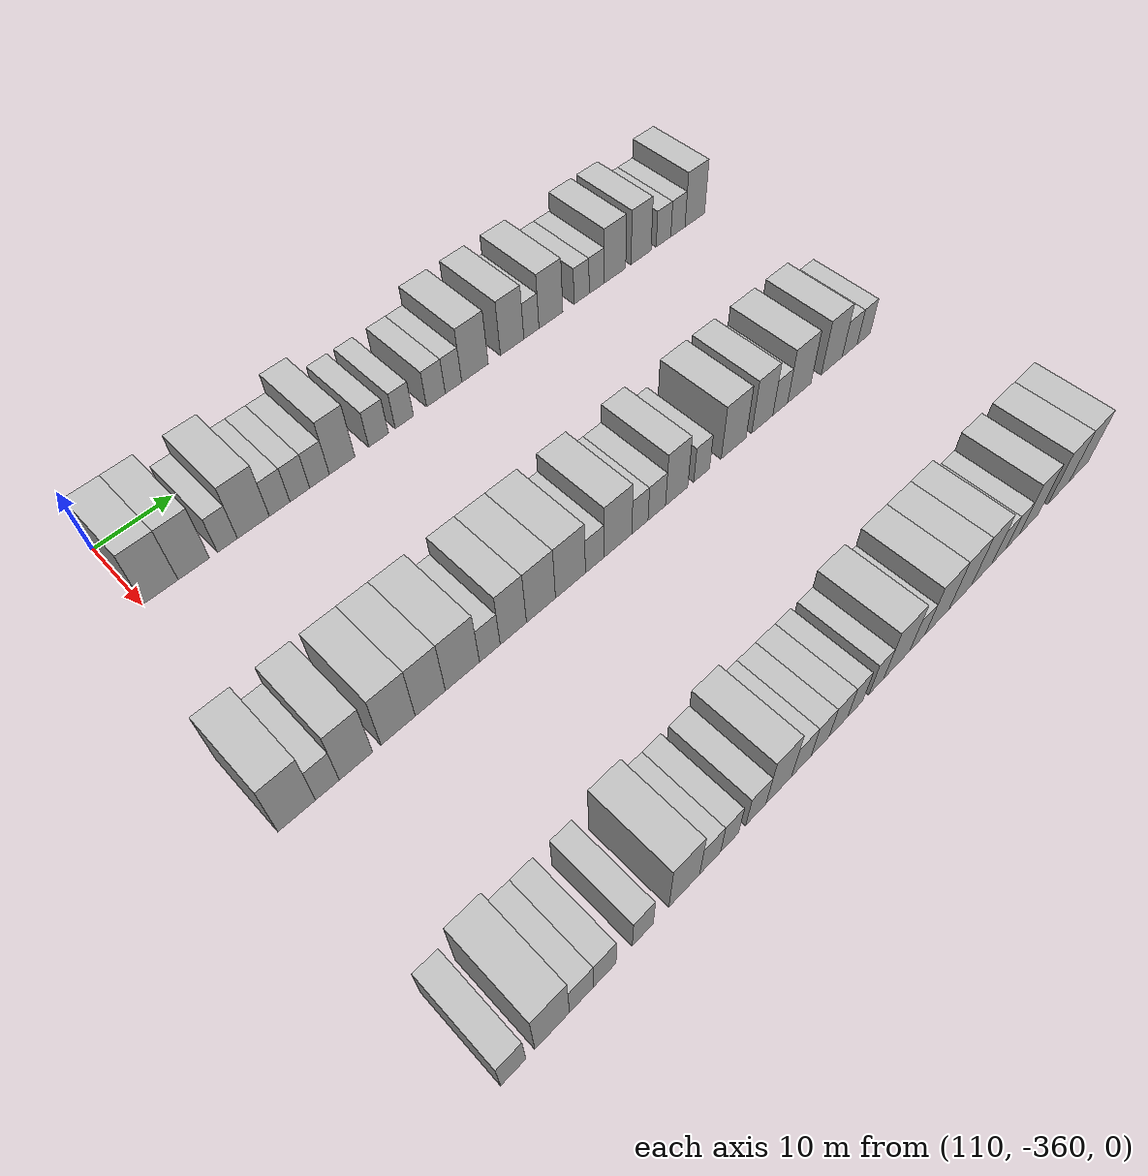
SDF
<sdf version="1.6">
 <world name="default">
  <model name="building_691">
   <static>1</static>
   <pose>115.0000 -357.7864 0 0.000000 0.000000 0.000000</pose>
   <link name="link">
    <pose>0 0 4.50 0 0 0</pose>
    <collision name="collision"><geometry><box><size>10.0000 4.2494 9.0000</size></box></geometry></collision>
    <visual name="visual">
     <cast_shadows>0</cast_shadows>
     <geometry><box><size>10.0000 4.2494 9.0000</size></box></geometry>
     <material>
      <script>
       <uri>model://HANNAS_wall/materials/scripts</uri>
       <uri>model://HANNAS_wall/materials/textures</uri>
       <name>vrc/HANNAS_wall</name>
      </script>
     </material>
    </visual>
   </link>
  </model>
  <model name="building_692">
   <static>1</static>
   <pose>115.0000 -353.7119 0 0.000000 0.000000 0.000000</pose>
   <link name="link">
    <pose>0 0 4.50 0 0 0</pose>
    <collision name="collision"><geometry><box><size>10.0000 3.8997 9.0000</size></box></geometry></collision>
    <visual name="visual">
     <cast_shadows>0</cast_shadows>
     <geometry><box><size>10.0000 3.8997 9.0000</size></box></geometry>
     <material>
      <script>
       <uri>model://HANNAS_wall/materials/scripts</uri>
       <uri>model://HANNAS_wall/materials/textures</uri>
       <name>vrc/HANNAS_wall</name>
      </script>
     </material>
    </visual>
   </link>
  </model>
  <model name="building_693">
   <static>1</static>
   <pose>115.0000 -349.4825 0 0.000000 0.000000 0.000000</pose>
   <link name="link">
    <pose>0 0 3.00 0 0 0</pose>
    <collision name="collision"><geometry><box><size>10.0000 2.5592 6.0000</size></box></geometry></collision>
    <visual name="visual">
     <cast_shadows>0</cast_shadows>
     <geometry><box><size>10.0000 2.5592 6.0000</size></box></geometry>
     <material>
      <script>
       <uri>model://HANNAS_wall/materials/scripts</uri>
       <uri>model://HANNAS_wall/materials/textures</uri>
       <name>vrc/HANNAS_wall</name>
      </script>
     </material>
    </visual>
   </link>
  </model>
  <model name="building_694">
   <static>1</static>
   <pose>115.0000 -346.1117 0 0.000000 0.000000 0.000000</pose>
   <link name="link">
    <pose>0 0 4.50 0 0 0</pose>
    <collision name="collision"><geometry><box><size>10.0000 4.1824 9.0000</size></box></geometry></collision>
    <visual name="visual">
     <cast_shadows>0</cast_shadows>
     <geometry><box><size>10.0000 4.1824 9.0000</size></box></geometry>
     <material>
      <script>
       <uri>model://HANNAS_wall/materials/scripts</uri>
       <uri>model://HANNAS_wall/materials/textures</uri>
       <name>vrc/HANNAS_wall</name>
      </script>
     </material>
    </visual>
   </link>
  </model>
  <model name="building_695">
   <static>1</static>
   <pose>115.0000 -342.6369 0 0.000000 0.000000 0.000000</pose>
   <link name="link">
    <pose>0 0 3.00 0 0 0</pose>
    <collision name="collision"><geometry><box><size>10.0000 2.7671 6.0000</size></box></geometry></collision>
    <visual name="visual">
     <cast_shadows>0</cast_shadows>
     <geometry><box><size>10.0000 2.7671 6.0000</size></box></geometry>
     <material>
      <script>
       <uri>model://HANNAS_wall/materials/scripts</uri>
       <uri>model://HANNAS_wall/materials/textures</uri>
       <name>vrc/HANNAS_wall</name>
      </script>
     </material>
    </visual>
   </link>
  </model>
  <model name="building_696">
   <static>1</static>
   <pose>115.0000 -339.9015 0 0.000000 0.000000 0.000000</pose>
   <link name="link">
    <pose>0 0 3.00 0 0 0</pose>
    <collision name="collision"><geometry><box><size>10.0000 2.7038 6.0000</size></box></geometry></collision>
    <visual name="visual">
     <cast_shadows>0</cast_shadows>
     <geometry><box><size>10.0000 2.7038 6.0000</size></box></geometry>
     <material>
      <script>
       <uri>model://HANNAS_wall/materials/scripts</uri>
       <uri>model://HANNAS_wall/materials/textures</uri>
       <name>vrc/HANNAS_wall</name>
      </script>
     </material>
    </visual>
   </link>
  </model>
  <model name="building_697">
   <static>1</static>
   <pose>115.0000 -337.1848 0 0.000000 0.000000 0.000000</pose>
   <link name="link">
    <pose>0 0 3.00 0 0 0</pose>
    <collision name="collision"><geometry><box><size>10.0000 2.7296 6.0000</size></box></geometry></collision>
    <visual name="visual">
     <cast_shadows>0</cast_shadows>
     <geometry><box><size>10.0000 2.7296 6.0000</size></box></geometry>
     <material>
      <script>
       <uri>model://HANNAS_wall/materials/scripts</uri>
       <uri>model://HANNAS_wall/materials/textures</uri>
       <name>vrc/HANNAS_wall</name>
      </script>
     </material>
    </visual>
   </link>
  </model>
  <model name="building_698">
   <static>1</static>
   <pose>115.0000 -334.0109 0 0.000000 0.000000 0.000000</pose>
   <link name="link">
    <pose>0 0 4.50 0 0 0</pose>
    <collision name="collision"><geometry><box><size>10.0000 3.6183 9.0000</size></box></geometry></collision>
    <visual name="visual">
     <cast_shadows>0</cast_shadows>
     <geometry><box><size>10.0000 3.6183 9.0000</size></box></geometry>
     <material>
      <script>
       <uri>model://HANNAS_wall/materials/scripts</uri>
       <uri>model://HANNAS_wall/materials/textures</uri>
       <name>vrc/HANNAS_wall</name>
      </script>
     </material>
    </visual>
   </link>
  </model>
  <model name="building_699">
   <static>1</static>
   <pose>115.0000 -328.7503 0 0.000000 0.000000 0.000000</pose>
   <link name="link">
    <pose>0 0 3.00 0 0 0</pose>
    <collision name="collision"><geometry><box><size>10.0000 2.9029 6.0000</size></box></geometry></collision>
    <visual name="visual">
     <cast_shadows>0</cast_shadows>
     <geometry><box><size>10.0000 2.9029 6.0000</size></box></geometry>
     <material>
      <script>
       <uri>model://HANNAS_wall/materials/scripts</uri>
       <uri>model://HANNAS_wall/materials/textures</uri>
       <name>vrc/HANNAS_wall</name>
      </script>
     </material>
    </visual>
   </link>
  </model>
  <model name="building_700">
   <static>1</static>
   <pose>115.0000 -324.9254 0 0.000000 0.000000 0.000000</pose>
   <link name="link">
    <pose>0 0 3.00 0 0 0</pose>
    <collision name="collision"><geometry><box><size>10.0000 2.7469 6.0000</size></box></geometry></collision>
    <visual name="visual">
     <cast_shadows>0</cast_shadows>
     <geometry><box><size>10.0000 2.7469 6.0000</size></box></geometry>
     <material>
      <script>
       <uri>model://HANNAS_wall/materials/scripts</uri>
       <uri>model://HANNAS_wall/materials/textures</uri>
       <name>vrc/HANNAS_wall</name>
      </script>
     </material>
    </visual>
   </link>
  </model>
  <model name="building_701">
   <static>1</static>
   <pose>115.0000 -320.0923 0 0.000000 0.000000 0.000000</pose>
   <link name="link">
    <pose>0 0 3.00 0 0 0</pose>
    <collision name="collision"><geometry><box><size>10.0000 2.9194 6.0000</size></box></geometry></collision>
    <visual name="visual">
     <cast_shadows>0</cast_shadows>
     <geometry><box><size>10.0000 2.9194 6.0000</size></box></geometry>
     <material>
      <script>
       <uri>model://HANNAS_wall/materials/scripts</uri>
       <uri>model://HANNAS_wall/materials/textures</uri>
       <name>vrc/HANNAS_wall</name>
      </script>
     </material>
    </visual>
   </link>
  </model>
  <model name="building_702">
   <static>1</static>
   <pose>115.0000 -317.3382 0 0.000000 0.000000 0.000000</pose>
   <link name="link">
    <pose>0 0 3.00 0 0 0</pose>
    <collision name="collision"><geometry><box><size>10.0000 2.5888 6.0000</size></box></geometry></collision>
    <visual name="visual">
     <cast_shadows>0</cast_shadows>
     <geometry><box><size>10.0000 2.5888 6.0000</size></box></geometry>
     <material>
      <script>
       <uri>model://HANNAS_wall/materials/scripts</uri>
       <uri>model://HANNAS_wall/materials/textures</uri>
       <name>vrc/HANNAS_wall</name>
      </script>
     </material>
    </visual>
   </link>
  </model>
  <model name="building_703">
   <static>1</static>
   <pose>115.0000 -313.9097 0 0.000000 0.000000 0.000000</pose>
   <link name="link">
    <pose>0 0 4.50 0 0 0</pose>
    <collision name="collision"><geometry><box><size>10.0000 4.2681 9.0000</size></box></geometry></collision>
    <visual name="visual">
     <cast_shadows>0</cast_shadows>
     <geometry><box><size>10.0000 4.2681 9.0000</size></box></geometry>
     <material>
      <script>
       <uri>model://HANNAS_wall/materials/scripts</uri>
       <uri>model://HANNAS_wall/materials/textures</uri>
       <name>vrc/HANNAS_wall</name>
      </script>
     </material>
    </visual>
   </link>
  </model>
  <model name="building_704">
   <static>1</static>
   <pose>115.0000 -307.8101 0 0.000000 0.000000 0.000000</pose>
   <link name="link">
    <pose>0 0 4.50 0 0 0</pose>
    <collision name="collision"><geometry><box><size>10.0000 3.9313 9.0000</size></box></geometry></collision>
    <visual name="visual">
     <cast_shadows>0</cast_shadows>
     <geometry><box><size>10.0000 3.9313 9.0000</size></box></geometry>
     <material>
      <script>
       <uri>model://HANNAS_wall/materials/scripts</uri>
       <uri>model://HANNAS_wall/materials/textures</uri>
       <name>vrc/HANNAS_wall</name>
      </script>
     </material>
    </visual>
   </link>
  </model>
  <model name="building_705">
   <static>1</static>
   <pose>115.0000 -304.5582 0 0.000000 0.000000 0.000000</pose>
   <link name="link">
    <pose>0 0 3.00 0 0 0</pose>
    <collision name="collision"><geometry><box><size>10.0000 2.5724 6.0000</size></box></geometry></collision>
    <visual name="visual">
     <cast_shadows>0</cast_shadows>
     <geometry><box><size>10.0000 2.5724 6.0000</size></box></geometry>
     <material>
      <script>
       <uri>model://HANNAS_wall/materials/scripts</uri>
       <uri>model://HANNAS_wall/materials/textures</uri>
       <name>vrc/HANNAS_wall</name>
      </script>
     </material>
    </visual>
   </link>
  </model>
  <model name="building_706">
   <static>1</static>
   <pose>115.0000 -301.1985 0 0.000000 0.000000 0.000000</pose>
   <link name="link">
    <pose>0 0 4.50 0 0 0</pose>
    <collision name="collision"><geometry><box><size>10.0000 4.1471 9.0000</size></box></geometry></collision>
    <visual name="visual">
     <cast_shadows>0</cast_shadows>
     <geometry><box><size>10.0000 4.1471 9.0000</size></box></geometry>
     <material>
      <script>
       <uri>model://HANNAS_wall/materials/scripts</uri>
       <uri>model://HANNAS_wall/materials/textures</uri>
       <name>vrc/HANNAS_wall</name>
      </script>
     </material>
    </visual>
   </link>
  </model>
  <model name="building_707">
   <static>1</static>
   <pose>115.0000 -295.7661 0 0.000000 0.000000 0.000000</pose>
   <link name="link">
    <pose>0 0 3.00 0 0 0</pose>
    <collision name="collision"><geometry><box><size>10.0000 2.7178 6.0000</size></box></geometry></collision>
    <visual name="visual">
     <cast_shadows>0</cast_shadows>
     <geometry><box><size>10.0000 2.7178 6.0000</size></box></geometry>
     <material>
      <script>
       <uri>model://HANNAS_wall/materials/scripts</uri>
       <uri>model://HANNAS_wall/materials/textures</uri>
       <name>vrc/HANNAS_wall</name>
      </script>
     </material>
    </visual>
   </link>
  </model>
  <model name="building_708">
   <static>1</static>
   <pose>115.0000 -293.0271 0 0.000000 0.000000 0.000000</pose>
   <link name="link">
    <pose>0 0 3.00 0 0 0</pose>
    <collision name="collision"><geometry><box><size>10.0000 2.7601 6.0000</size></box></geometry></collision>
    <visual name="visual">
     <cast_shadows>0</cast_shadows>
     <geometry><box><size>10.0000 2.7601 6.0000</size></box></geometry>
     <material>
      <script>
       <uri>model://HANNAS_wall/materials/scripts</uri>
       <uri>model://HANNAS_wall/materials/textures</uri>
       <name>vrc/HANNAS_wall</name>
      </script>
     </material>
    </visual>
   </link>
  </model>
  <model name="building_709">
   <static>1</static>
   <pose>115.0000 -289.6651 0 0.000000 0.000000 0.000000</pose>
   <link name="link">
    <pose>0 0 4.50 0 0 0</pose>
    <collision name="collision"><geometry><box><size>10.0000 3.9638 9.0000</size></box></geometry></collision>
    <visual name="visual">
     <cast_shadows>0</cast_shadows>
     <geometry><box><size>10.0000 3.9638 9.0000</size></box></geometry>
     <material>
      <script>
       <uri>model://HANNAS_wall/materials/scripts</uri>
       <uri>model://HANNAS_wall/materials/textures</uri>
       <name>vrc/HANNAS_wall</name>
      </script>
     </material>
    </visual>
   </link>
  </model>
  <model name="building_710">
   <static>1</static>
   <pose>115.0000 -284.7633 0 0.000000 0.000000 0.000000</pose>
   <link name="link">
    <pose>0 0 4.50 0 0 0</pose>
    <collision name="collision"><geometry><box><size>10.0000 3.8397 9.0000</size></box></geometry></collision>
    <visual name="visual">
     <cast_shadows>0</cast_shadows>
     <geometry><box><size>10.0000 3.8397 9.0000</size></box></geometry>
     <material>
      <script>
       <uri>model://HANNAS_wall/materials/scripts</uri>
       <uri>model://HANNAS_wall/materials/textures</uri>
       <name>vrc/HANNAS_wall</name>
      </script>
     </material>
    </visual>
   </link>
  </model>
  <model name="building_711">
   <static>1</static>
   <pose>115.0000 -280.4086 0 0.000000 0.000000 0.000000</pose>
   <link name="link">
    <pose>0 0 3.00 0 0 0</pose>
    <collision name="collision"><geometry><box><size>10.0000 2.8697 6.0000</size></box></geometry></collision>
    <visual name="visual">
     <cast_shadows>0</cast_shadows>
     <geometry><box><size>10.0000 2.8697 6.0000</size></box></geometry>
     <material>
      <script>
       <uri>model://HANNAS_wall/materials/scripts</uri>
       <uri>model://HANNAS_wall/materials/textures</uri>
       <name>vrc/HANNAS_wall</name>
      </script>
     </material>
    </visual>
   </link>
  </model>
  <model name="building_712">
   <static>1</static>
   <pose>115.0000 -277.5620 0 0.000000 0.000000 0.000000</pose>
   <link name="link">
    <pose>0 0 3.00 0 0 0</pose>
    <collision name="collision"><geometry><box><size>10.0000 2.8234 6.0000</size></box></geometry></collision>
    <visual name="visual">
     <cast_shadows>0</cast_shadows>
     <geometry><box><size>10.0000 2.8234 6.0000</size></box></geometry>
     <material>
      <script>
       <uri>model://HANNAS_wall/materials/scripts</uri>
       <uri>model://HANNAS_wall/materials/textures</uri>
       <name>vrc/HANNAS_wall</name>
      </script>
     </material>
    </visual>
   </link>
  </model>
  <model name="building_713">
   <static>1</static>
   <pose>115.0000 -274.1670 0 0.000000 0.000000 0.000000</pose>
   <link name="link">
    <pose>0 0 4.50 0 0 0</pose>
    <collision name="collision"><geometry><box><size>10.0000 3.9666 9.0000</size></box></geometry></collision>
    <visual name="visual">
     <cast_shadows>0</cast_shadows>
     <geometry><box><size>10.0000 3.9666 9.0000</size></box></geometry>
     <material>
      <script>
       <uri>model://HANNAS_wall/materials/scripts</uri>
       <uri>model://HANNAS_wall/materials/textures</uri>
       <name>vrc/HANNAS_wall</name>
      </script>
     </material>
    </visual>
   </link>
  </model>
  <model name="building_913">
   <static>1</static>
   <pose>145.0000 -362.1846 0 0.000000 0.000000 0.000000</pose>
   <link name="link">
    <pose>0 0 4.50 0 0 0</pose>
    <collision name="collision"><geometry><box><size>10.0000 4.2680 9.0000</size></box></geometry></collision>
    <visual name="visual">
     <cast_shadows>0</cast_shadows>
     <geometry><box><size>10.0000 4.2680 9.0000</size></box></geometry>
     <material>
      <script>
       <uri>model://HANNAS_wall/materials/scripts</uri>
       <uri>model://HANNAS_wall/materials/textures</uri>
       <name>vrc/HANNAS_wall</name>
      </script>
     </material>
    </visual>
   </link>
  </model>
  <model name="building_914">
   <static>1</static>
   <pose>145.0000 -358.6756 0 0.000000 0.000000 0.000000</pose>
   <link name="link">
    <pose>0 0 3.00 0 0 0</pose>
    <collision name="collision"><geometry><box><size>10.0000 2.7500 6.0000</size></box></geometry></collision>
    <visual name="visual">
     <cast_shadows>0</cast_shadows>
     <geometry><box><size>10.0000 2.7500 6.0000</size></box></geometry>
     <material>
      <script>
       <uri>model://HANNAS_wall/materials/scripts</uri>
       <uri>model://HANNAS_wall/materials/textures</uri>
       <name>vrc/HANNAS_wall</name>
      </script>
     </material>
    </visual>
   </link>
  </model>
  <model name="building_915">
   <static>1</static>
   <pose>145.0000 -355.3198 0 0.000000 0.000000 0.000000</pose>
   <link name="link">
    <pose>0 0 4.50 0 0 0</pose>
    <collision name="collision"><geometry><box><size>10.0000 3.9617 9.0000</size></box></geometry></collision>
    <visual name="visual">
     <cast_shadows>0</cast_shadows>
     <geometry><box><size>10.0000 3.9617 9.0000</size></box></geometry>
     <material>
      <script>
       <uri>model://HANNAS_wall/materials/scripts</uri>
       <uri>model://HANNAS_wall/materials/textures</uri>
       <name>vrc/HANNAS_wall</name>
      </script>
     </material>
    </visual>
   </link>
  </model>
  <model name="building_916">
   <static>1</static>
   <pose>145.0000 -350.2076 0 0.000000 0.000000 0.000000</pose>
   <link name="link">
    <pose>0 0 4.50 0 0 0</pose>
    <collision name="collision"><geometry><box><size>10.0000 4.2628 9.0000</size></box></geometry></collision>
    <visual name="visual">
     <cast_shadows>0</cast_shadows>
     <geometry><box><size>10.0000 4.2628 9.0000</size></box></geometry>
     <material>
      <script>
       <uri>model://HANNAS_wall/materials/scripts</uri>
       <uri>model://HANNAS_wall/materials/textures</uri>
       <name>vrc/HANNAS_wall</name>
      </script>
     </material>
    </visual>
   </link>
  </model>
  <model name="building_917">
   <static>1</static>
   <pose>145.0000 -346.1502 0 0.000000 0.000000 0.000000</pose>
   <link name="link">
    <pose>0 0 4.50 0 0 0</pose>
    <collision name="collision"><geometry><box><size>10.0000 3.8519 9.0000</size></box></geometry></collision>
    <visual name="visual">
     <cast_shadows>0</cast_shadows>
     <geometry><box><size>10.0000 3.8519 9.0000</size></box></geometry>
     <material>
      <script>
       <uri>model://HANNAS_wall/materials/scripts</uri>
       <uri>model://HANNAS_wall/materials/textures</uri>
       <name>vrc/HANNAS_wall</name>
      </script>
     </material>
    </visual>
   </link>
  </model>
  <model name="building_918">
   <static>1</static>
   <pose>145.0000 -341.9765 0 0.000000 0.000000 0.000000</pose>
   <link name="link">
    <pose>0 0 4.50 0 0 0</pose>
    <collision name="collision"><geometry><box><size>10.0000 4.4955 9.0000</size></box></geometry></collision>
    <visual name="visual">
     <cast_shadows>0</cast_shadows>
     <geometry><box><size>10.0000 4.4955 9.0000</size></box></geometry>
     <material>
      <script>
       <uri>model://HANNAS_wall/materials/scripts</uri>
       <uri>model://HANNAS_wall/materials/textures</uri>
       <name>vrc/HANNAS_wall</name>
      </script>
     </material>
    </visual>
   </link>
  </model>
  <model name="building_919">
   <static>1</static>
   <pose>145.0000 -338.3317 0 0.000000 0.000000 0.000000</pose>
   <link name="link">
    <pose>0 0 3.00 0 0 0</pose>
    <collision name="collision"><geometry><box><size>10.0000 2.7942 6.0000</size></box></geometry></collision>
    <visual name="visual">
     <cast_shadows>0</cast_shadows>
     <geometry><box><size>10.0000 2.7942 6.0000</size></box></geometry>
     <material>
      <script>
       <uri>model://HANNAS_wall/materials/scripts</uri>
       <uri>model://HANNAS_wall/materials/textures</uri>
       <name>vrc/HANNAS_wall</name>
      </script>
     </material>
    </visual>
   </link>
  </model>
  <model name="building_920">
   <static>1</static>
   <pose>145.0000 -335.1112 0 0.000000 0.000000 0.000000</pose>
   <link name="link">
    <pose>0 0 4.50 0 0 0</pose>
    <collision name="collision"><geometry><box><size>10.0000 3.6466 9.0000</size></box></geometry></collision>
    <visual name="visual">
     <cast_shadows>0</cast_shadows>
     <geometry><box><size>10.0000 3.6466 9.0000</size></box></geometry>
     <material>
      <script>
       <uri>model://HANNAS_wall/materials/scripts</uri>
       <uri>model://HANNAS_wall/materials/textures</uri>
       <name>vrc/HANNAS_wall</name>
      </script>
     </material>
    </visual>
   </link>
  </model>
  <model name="building_921">
   <static>1</static>
   <pose>145.0000 -331.2225 0 0.000000 0.000000 0.000000</pose>
   <link name="link">
    <pose>0 0 4.50 0 0 0</pose>
    <collision name="collision"><geometry><box><size>10.0000 4.1308 9.0000</size></box></geometry></collision>
    <visual name="visual">
     <cast_shadows>0</cast_shadows>
     <geometry><box><size>10.0000 4.1308 9.0000</size></box></geometry>
     <material>
      <script>
       <uri>model://HANNAS_wall/materials/scripts</uri>
       <uri>model://HANNAS_wall/materials/textures</uri>
       <name>vrc/HANNAS_wall</name>
      </script>
     </material>
    </visual>
   </link>
  </model>
  <model name="building_922">
   <static>1</static>
   <pose>145.0000 -326.9554 0 0.000000 0.000000 0.000000</pose>
   <link name="link">
    <pose>0 0 4.50 0 0 0</pose>
    <collision name="collision"><geometry><box><size>10.0000 4.4035 9.0000</size></box></geometry></collision>
    <visual name="visual">
     <cast_shadows>0</cast_shadows>
     <geometry><box><size>10.0000 4.4035 9.0000</size></box></geometry>
     <material>
      <script>
       <uri>model://HANNAS_wall/materials/scripts</uri>
       <uri>model://HANNAS_wall/materials/textures</uri>
       <name>vrc/HANNAS_wall</name>
      </script>
     </material>
    </visual>
   </link>
  </model>
  <model name="building_923">
   <static>1</static>
   <pose>145.0000 -323.3463 0 0.000000 0.000000 0.000000</pose>
   <link name="link">
    <pose>0 0 3.00 0 0 0</pose>
    <collision name="collision"><geometry><box><size>10.0000 2.8147 6.0000</size></box></geometry></collision>
    <visual name="visual">
     <cast_shadows>0</cast_shadows>
     <geometry><box><size>10.0000 2.8147 6.0000</size></box></geometry>
     <material>
      <script>
       <uri>model://HANNAS_wall/materials/scripts</uri>
       <uri>model://HANNAS_wall/materials/textures</uri>
       <name>vrc/HANNAS_wall</name>
      </script>
     </material>
    </visual>
   </link>
  </model>
  <model name="building_924">
   <static>1</static>
   <pose>145.0000 -319.8065 0 0.000000 0.000000 0.000000</pose>
   <link name="link">
    <pose>0 0 4.50 0 0 0</pose>
    <collision name="collision"><geometry><box><size>10.0000 4.2647 9.0000</size></box></geometry></collision>
    <visual name="visual">
     <cast_shadows>0</cast_shadows>
     <geometry><box><size>10.0000 4.2647 9.0000</size></box></geometry>
     <material>
      <script>
       <uri>model://HANNAS_wall/materials/scripts</uri>
       <uri>model://HANNAS_wall/materials/textures</uri>
       <name>vrc/HANNAS_wall</name>
      </script>
     </material>
    </visual>
   </link>
  </model>
  <model name="building_925">
   <static>1</static>
   <pose>145.0000 -316.3868 0 0.000000 0.000000 0.000000</pose>
   <link name="link">
    <pose>0 0 3.00 0 0 0</pose>
    <collision name="collision"><geometry><box><size>10.0000 2.5748 6.0000</size></box></geometry></collision>
    <visual name="visual">
     <cast_shadows>0</cast_shadows>
     <geometry><box><size>10.0000 2.5748 6.0000</size></box></geometry>
     <material>
      <script>
       <uri>model://HANNAS_wall/materials/scripts</uri>
       <uri>model://HANNAS_wall/materials/textures</uri>
       <name>vrc/HANNAS_wall</name>
      </script>
     </material>
    </visual>
   </link>
  </model>
  <model name="building_926">
   <static>1</static>
   <pose>145.0000 -313.6956 0 0.000000 0.000000 0.000000</pose>
   <link name="link">
    <pose>0 0 3.00 0 0 0</pose>
    <collision name="collision"><geometry><box><size>10.0000 2.8077 6.0000</size></box></geometry></collision>
    <visual name="visual">
     <cast_shadows>0</cast_shadows>
     <geometry><box><size>10.0000 2.8077 6.0000</size></box></geometry>
     <material>
      <script>
       <uri>model://HANNAS_wall/materials/scripts</uri>
       <uri>model://HANNAS_wall/materials/textures</uri>
       <name>vrc/HANNAS_wall</name>
      </script>
     </material>
    </visual>
   </link>
  </model>
  <model name="building_927">
   <static>1</static>
   <pose>145.0000 -310.4594 0 0.000000 0.000000 0.000000</pose>
   <link name="link">
    <pose>0 0 4.50 0 0 0</pose>
    <collision name="collision"><geometry><box><size>10.0000 3.6646 9.0000</size></box></geometry></collision>
    <visual name="visual">
     <cast_shadows>0</cast_shadows>
     <geometry><box><size>10.0000 3.6646 9.0000</size></box></geometry>
     <material>
      <script>
       <uri>model://HANNAS_wall/materials/scripts</uri>
       <uri>model://HANNAS_wall/materials/textures</uri>
       <name>vrc/HANNAS_wall</name>
      </script>
     </material>
    </visual>
   </link>
  </model>
  <model name="building_928">
   <static>1</static>
   <pose>145.0000 -306.2858 0 0.000000 0.000000 0.000000</pose>
   <link name="link">
    <pose>0 0 3.00 0 0 0</pose>
    <collision name="collision"><geometry><box><size>10.0000 2.6826 6.0000</size></box></geometry></collision>
    <visual name="visual">
     <cast_shadows>0</cast_shadows>
     <geometry><box><size>10.0000 2.6826 6.0000</size></box></geometry>
     <material>
      <script>
       <uri>model://HANNAS_wall/materials/scripts</uri>
       <uri>model://HANNAS_wall/materials/textures</uri>
       <name>vrc/HANNAS_wall</name>
      </script>
     </material>
    </visual>
   </link>
  </model>
  <model name="building_929">
   <static>1</static>
   <pose>145.0000 -300.7586 0 0.000000 0.000000 0.000000</pose>
   <link name="link">
    <pose>0 0 4.50 0 0 0</pose>
    <collision name="collision"><geometry><box><size>10.0000 4.3719 9.0000</size></box></geometry></collision>
    <visual name="visual">
     <cast_shadows>0</cast_shadows>
     <geometry><box><size>10.0000 4.3719 9.0000</size></box></geometry>
     <material>
      <script>
       <uri>model://HANNAS_wall/materials/scripts</uri>
       <uri>model://HANNAS_wall/materials/textures</uri>
       <name>vrc/HANNAS_wall</name>
      </script>
     </material>
    </visual>
   </link>
  </model>
  <model name="building_930">
   <static>1</static>
   <pose>145.0000 -295.6589 0 0.000000 0.000000 0.000000</pose>
   <link name="link">
    <pose>0 0 4.50 0 0 0</pose>
    <collision name="collision"><geometry><box><size>10.0000 3.8275 9.0000</size></box></geometry></collision>
    <visual name="visual">
     <cast_shadows>0</cast_shadows>
     <geometry><box><size>10.0000 3.8275 9.0000</size></box></geometry>
     <material>
      <script>
       <uri>model://HANNAS_wall/materials/scripts</uri>
       <uri>model://HANNAS_wall/materials/textures</uri>
       <name>vrc/HANNAS_wall</name>
      </script>
     </material>
    </visual>
   </link>
  </model>
  <model name="building_931">
   <static>1</static>
   <pose>145.0000 -292.3792 0 0.000000 0.000000 0.000000</pose>
   <link name="link">
    <pose>0 0 3.00 0 0 0</pose>
    <collision name="collision"><geometry><box><size>10.0000 2.7320 6.0000</size></box></geometry></collision>
    <visual name="visual">
     <cast_shadows>0</cast_shadows>
     <geometry><box><size>10.0000 2.7320 6.0000</size></box></geometry>
     <material>
      <script>
       <uri>model://HANNAS_wall/materials/scripts</uri>
       <uri>model://HANNAS_wall/materials/textures</uri>
       <name>vrc/HANNAS_wall</name>
      </script>
     </material>
    </visual>
   </link>
  </model>
  <model name="building_932">
   <static>1</static>
   <pose>145.0000 -288.8005 0 0.000000 0.000000 0.000000</pose>
   <link name="link">
    <pose>0 0 4.50 0 0 0</pose>
    <collision name="collision"><geometry><box><size>10.0000 4.4254 9.0000</size></box></geometry></collision>
    <visual name="visual">
     <cast_shadows>0</cast_shadows>
     <geometry><box><size>10.0000 4.4254 9.0000</size></box></geometry>
     <material>
      <script>
       <uri>model://HANNAS_wall/materials/scripts</uri>
       <uri>model://HANNAS_wall/materials/textures</uri>
       <name>vrc/HANNAS_wall</name>
      </script>
     </material>
    </visual>
   </link>
  </model>
  <model name="building_933">
   <static>1</static>
   <pose>145.0000 -282.5304 0 0.000000 0.000000 0.000000</pose>
   <link name="link">
    <pose>0 0 4.50 0 0 0</pose>
    <collision name="collision"><geometry><box><size>10.0000 4.1147 9.0000</size></box></geometry></collision>
    <visual name="visual">
     <cast_shadows>0</cast_shadows>
     <geometry><box><size>10.0000 4.1147 9.0000</size></box></geometry>
     <material>
      <script>
       <uri>model://HANNAS_wall/materials/scripts</uri>
       <uri>model://HANNAS_wall/materials/textures</uri>
       <name>vrc/HANNAS_wall</name>
      </script>
     </material>
    </visual>
   </link>
  </model>
  <model name="building_934">
   <static>1</static>
   <pose>145.0000 -278.9784 0 0.000000 0.000000 0.000000</pose>
   <link name="link">
    <pose>0 0 3.00 0 0 0</pose>
    <collision name="collision"><geometry><box><size>10.0000 2.9894 6.0000</size></box></geometry></collision>
    <visual name="visual">
     <cast_shadows>0</cast_shadows>
     <geometry><box><size>10.0000 2.9894 6.0000</size></box></geometry>
     <material>
      <script>
       <uri>model://HANNAS_wall/materials/scripts</uri>
       <uri>model://HANNAS_wall/materials/textures</uri>
       <name>vrc/HANNAS_wall</name>
      </script>
     </material>
    </visual>
   </link>
  </model>
  <model name="building_935">
   <static>1</static>
   <pose>145.0000 -276.1541 0 0.000000 0.000000 0.000000</pose>
   <link name="link">
    <pose>0 0 3.00 0 0 0</pose>
    <collision name="collision"><geometry><box><size>10.0000 2.6590 6.0000</size></box></geometry></collision>
    <visual name="visual">
     <cast_shadows>0</cast_shadows>
     <geometry><box><size>10.0000 2.6590 6.0000</size></box></geometry>
     <material>
      <script>
       <uri>model://HANNAS_wall/materials/scripts</uri>
       <uri>model://HANNAS_wall/materials/textures</uri>
       <name>vrc/HANNAS_wall</name>
      </script>
     </material>
    </visual>
   </link>
  </model>
  <model name="building_1145">
   <static>1</static>
   <pose>175.0000 -362.6239 0 0.000000 0.000000 0.000000</pose>
   <link name="link">
    <pose>0 0 3.00 0 0 0</pose>
    <collision name="collision"><geometry><box><size>10.0000 2.7802 6.0000</size></box></geometry></collision>
    <visual name="visual">
     <cast_shadows>0</cast_shadows>
     <geometry><box><size>10.0000 2.7802 6.0000</size></box></geometry>
     <material>
      <script>
       <uri>model://HANNAS_wall/materials/scripts</uri>
       <uri>model://HANNAS_wall/materials/textures</uri>
       <name>vrc/HANNAS_wall</name>
      </script>
     </material>
    </visual>
   </link>
  </model>
  <model name="building_1146">
   <static>1</static>
   <pose>175.0000 -358.2551 0 0.000000 0.000000 0.000000</pose>
   <link name="link">
    <pose>0 0 4.50 0 0 0</pose>
    <collision name="collision"><geometry><box><size>10.0000 3.9573 9.0000</size></box></geometry></collision>
    <visual name="visual">
     <cast_shadows>0</cast_shadows>
     <geometry><box><size>10.0000 3.9573 9.0000</size></box></geometry>
     <material>
      <script>
       <uri>model://HANNAS_wall/materials/scripts</uri>
       <uri>model://HANNAS_wall/materials/textures</uri>
       <name>vrc/HANNAS_wall</name>
      </script>
     </material>
    </visual>
   </link>
  </model>
  <model name="building_1147">
   <static>1</static>
   <pose>175.0000 -354.8537 0 0.000000 0.000000 0.000000</pose>
   <link name="link">
    <pose>0 0 3.00 0 0 0</pose>
    <collision name="collision"><geometry><box><size>10.0000 2.8455 6.0000</size></box></geometry></collision>
    <visual name="visual">
     <cast_shadows>0</cast_shadows>
     <geometry><box><size>10.0000 2.8455 6.0000</size></box></geometry>
     <material>
      <script>
       <uri>model://HANNAS_wall/materials/scripts</uri>
       <uri>model://HANNAS_wall/materials/textures</uri>
       <name>vrc/HANNAS_wall</name>
      </script>
     </material>
    </visual>
   </link>
  </model>
  <model name="building_1148">
   <static>1</static>
   <pose>175.0000 -352.0898 0 0.000000 0.000000 0.000000</pose>
   <link name="link">
    <pose>0 0 3.00 0 0 0</pose>
    <collision name="collision"><geometry><box><size>10.0000 2.6823 6.0000</size></box></geometry></collision>
    <visual name="visual">
     <cast_shadows>0</cast_shadows>
     <geometry><box><size>10.0000 2.6823 6.0000</size></box></geometry>
     <material>
      <script>
       <uri>model://HANNAS_wall/materials/scripts</uri>
       <uri>model://HANNAS_wall/materials/textures</uri>
       <name>vrc/HANNAS_wall</name>
      </script>
     </material>
    </visual>
   </link>
  </model>
  <model name="building_1149">
   <static>1</static>
   <pose>175.0000 -347.4324 0 0.000000 0.000000 0.000000</pose>
   <link name="link">
    <pose>0 0 3.00 0 0 0</pose>
    <collision name="collision"><geometry><box><size>10.0000 2.6326 6.0000</size></box></geometry></collision>
    <visual name="visual">
     <cast_shadows>0</cast_shadows>
     <geometry><box><size>10.0000 2.6326 6.0000</size></box></geometry>
     <material>
      <script>
       <uri>model://HANNAS_wall/materials/scripts</uri>
       <uri>model://HANNAS_wall/materials/textures</uri>
       <name>vrc/HANNAS_wall</name>
      </script>
     </material>
    </visual>
   </link>
  </model>
  <model name="building_1150">
   <static>1</static>
   <pose>175.0000 -342.0931 0 0.000000 0.000000 0.000000</pose>
   <link name="link">
    <pose>0 0 4.50 0 0 0</pose>
    <collision name="collision"><geometry><box><size>10.0000 4.0459 9.0000</size></box></geometry></collision>
    <visual name="visual">
     <cast_shadows>0</cast_shadows>
     <geometry><box><size>10.0000 4.0459 9.0000</size></box></geometry>
     <material>
      <script>
       <uri>model://HANNAS_wall/materials/scripts</uri>
       <uri>model://HANNAS_wall/materials/textures</uri>
       <name>vrc/HANNAS_wall</name>
      </script>
     </material>
    </visual>
   </link>
  </model>
  <model name="building_1151">
   <static>1</static>
   <pose>175.0000 -338.6581 0 0.000000 0.000000 0.000000</pose>
   <link name="link">
    <pose>0 0 3.00 0 0 0</pose>
    <collision name="collision"><geometry><box><size>10.0000 2.8241 6.0000</size></box></geometry></collision>
    <visual name="visual">
     <cast_shadows>0</cast_shadows>
     <geometry><box><size>10.0000 2.8241 6.0000</size></box></geometry>
     <material>
      <script>
       <uri>model://HANNAS_wall/materials/scripts</uri>
       <uri>model://HANNAS_wall/materials/textures</uri>
       <name>vrc/HANNAS_wall</name>
      </script>
     </material>
    </visual>
   </link>
  </model>
  <model name="building_1152">
   <static>1</static>
   <pose>175.0000 -335.9972 0 0.000000 0.000000 0.000000</pose>
   <link name="link">
    <pose>0 0 3.00 0 0 0</pose>
    <collision name="collision"><geometry><box><size>10.0000 2.4977 6.0000</size></box></geometry></collision>
    <visual name="visual">
     <cast_shadows>0</cast_shadows>
     <geometry><box><size>10.0000 2.4977 6.0000</size></box></geometry>
     <material>
      <script>
       <uri>model://HANNAS_wall/materials/scripts</uri>
       <uri>model://HANNAS_wall/materials/textures</uri>
       <name>vrc/HANNAS_wall</name>
      </script>
     </material>
    </visual>
   </link>
  </model>
  <model name="building_1153">
   <static>1</static>
   <pose>175.0000 -332.3045 0 0.000000 0.000000 0.000000</pose>
   <link name="link">
    <pose>0 0 3.00 0 0 0</pose>
    <collision name="collision"><geometry><box><size>10.0000 2.8877 6.0000</size></box></geometry></collision>
    <visual name="visual">
     <cast_shadows>0</cast_shadows>
     <geometry><box><size>10.0000 2.8877 6.0000</size></box></geometry>
     <material>
      <script>
       <uri>model://HANNAS_wall/materials/scripts</uri>
       <uri>model://HANNAS_wall/materials/textures</uri>
       <name>vrc/HANNAS_wall</name>
      </script>
     </material>
    </visual>
   </link>
  </model>
  <model name="building_1154">
   <static>1</static>
   <pose>175.0000 -328.9929 0 0.000000 0.000000 0.000000</pose>
   <link name="link">
    <pose>0 0 4.50 0 0 0</pose>
    <collision name="collision"><geometry><box><size>10.0000 3.7354 9.0000</size></box></geometry></collision>
    <visual name="visual">
     <cast_shadows>0</cast_shadows>
     <geometry><box><size>10.0000 3.7354 9.0000</size></box></geometry>
     <material>
      <script>
       <uri>model://HANNAS_wall/materials/scripts</uri>
       <uri>model://HANNAS_wall/materials/textures</uri>
       <name>vrc/HANNAS_wall</name>
      </script>
     </material>
    </visual>
   </link>
  </model>
  <model name="building_1155">
   <static>1</static>
   <pose>175.0000 -325.6568 0 0.000000 0.000000 0.000000</pose>
   <link name="link">
    <pose>0 0 3.00 0 0 0</pose>
    <collision name="collision"><geometry><box><size>10.0000 2.9370 6.0000</size></box></geometry></collision>
    <visual name="visual">
     <cast_shadows>0</cast_shadows>
     <geometry><box><size>10.0000 2.9370 6.0000</size></box></geometry>
     <material>
      <script>
       <uri>model://HANNAS_wall/materials/scripts</uri>
       <uri>model://HANNAS_wall/materials/textures</uri>
       <name>vrc/HANNAS_wall</name>
      </script>
     </material>
    </visual>
   </link>
  </model>
  <model name="building_1156">
   <static>1</static>
   <pose>175.0000 -322.8201 0 0.000000 0.000000 0.000000</pose>
   <link name="link">
    <pose>0 0 3.00 0 0 0</pose>
    <collision name="collision"><geometry><box><size>10.0000 2.7363 6.0000</size></box></geometry></collision>
    <visual name="visual">
     <cast_shadows>0</cast_shadows>
     <geometry><box><size>10.0000 2.7363 6.0000</size></box></geometry>
     <material>
      <script>
       <uri>model://HANNAS_wall/materials/scripts</uri>
       <uri>model://HANNAS_wall/materials/textures</uri>
       <name>vrc/HANNAS_wall</name>
      </script>
     </material>
    </visual>
   </link>
  </model>
  <model name="building_1157">
   <static>1</static>
   <pose>175.0000 -319.9922 0 0.000000 0.000000 0.000000</pose>
   <link name="link">
    <pose>0 0 3.00 0 0 0</pose>
    <collision name="collision"><geometry><box><size>10.0000 2.9193 6.0000</size></box></geometry></collision>
    <visual name="visual">
     <cast_shadows>0</cast_shadows>
     <geometry><box><size>10.0000 2.9193 6.0000</size></box></geometry>
     <material>
      <script>
       <uri>model://HANNAS_wall/materials/scripts</uri>
       <uri>model://HANNAS_wall/materials/textures</uri>
       <name>vrc/HANNAS_wall</name>
      </script>
     </material>
    </visual>
   </link>
  </model>
  <model name="building_1158">
   <static>1</static>
   <pose>175.0000 -317.3225 0 0.000000 0.000000 0.000000</pose>
   <link name="link">
    <pose>0 0 3.00 0 0 0</pose>
    <collision name="collision"><geometry><box><size>10.0000 2.4202 6.0000</size></box></geometry></collision>
    <visual name="visual">
     <cast_shadows>0</cast_shadows>
     <geometry><box><size>10.0000 2.4202 6.0000</size></box></geometry>
     <material>
      <script>
       <uri>model://HANNAS_wall/materials/scripts</uri>
       <uri>model://HANNAS_wall/materials/textures</uri>
       <name>vrc/HANNAS_wall</name>
      </script>
     </material>
    </visual>
   </link>
  </model>
  <model name="building_1159">
   <static>1</static>
   <pose>175.0000 -313.8853 0 0.000000 0.000000 0.000000</pose>
   <link name="link">
    <pose>0 0 3.00 0 0 0</pose>
    <collision name="collision"><geometry><box><size>10.0000 2.4541 6.0000</size></box></geometry></collision>
    <visual name="visual">
     <cast_shadows>0</cast_shadows>
     <geometry><box><size>10.0000 2.4541 6.0000</size></box></geometry>
     <material>
      <script>
       <uri>model://HANNAS_wall/materials/scripts</uri>
       <uri>model://HANNAS_wall/materials/textures</uri>
       <name>vrc/HANNAS_wall</name>
      </script>
     </material>
    </visual>
   </link>
  </model>
  <model name="building_1160">
   <static>1</static>
   <pose>175.0000 -310.4755 0 0.000000 0.000000 0.000000</pose>
   <link name="link">
    <pose>0 0 4.50 0 0 0</pose>
    <collision name="collision"><geometry><box><size>10.0000 4.3657 9.0000</size></box></geometry></collision>
    <visual name="visual">
     <cast_shadows>0</cast_shadows>
     <geometry><box><size>10.0000 4.3657 9.0000</size></box></geometry>
     <material>
      <script>
       <uri>model://HANNAS_wall/materials/scripts</uri>
       <uri>model://HANNAS_wall/materials/textures</uri>
       <name>vrc/HANNAS_wall</name>
      </script>
     </material>
    </visual>
   </link>
  </model>
  <model name="building_1161">
   <static>1</static>
   <pose>175.0000 -306.9645 0 0.000000 0.000000 0.000000</pose>
   <link name="link">
    <pose>0 0 3.00 0 0 0</pose>
    <collision name="collision"><geometry><box><size>10.0000 2.6563 6.0000</size></box></geometry></collision>
    <visual name="visual">
     <cast_shadows>0</cast_shadows>
     <geometry><box><size>10.0000 2.6563 6.0000</size></box></geometry>
     <material>
      <script>
       <uri>model://HANNAS_wall/materials/scripts</uri>
       <uri>model://HANNAS_wall/materials/textures</uri>
       <name>vrc/HANNAS_wall</name>
      </script>
     </material>
    </visual>
   </link>
  </model>
  <model name="building_1162">
   <static>1</static>
   <pose>175.0000 -303.5104 0 0.000000 0.000000 0.000000</pose>
   <link name="link">
    <pose>0 0 4.50 0 0 0</pose>
    <collision name="collision"><geometry><box><size>10.0000 4.2517 9.0000</size></box></geometry></collision>
    <visual name="visual">
     <cast_shadows>0</cast_shadows>
     <geometry><box><size>10.0000 4.2517 9.0000</size></box></geometry>
     <material>
      <script>
       <uri>model://HANNAS_wall/materials/scripts</uri>
       <uri>model://HANNAS_wall/materials/textures</uri>
       <name>vrc/HANNAS_wall</name>
      </script>
     </material>
    </visual>
   </link>
  </model>
  <model name="building_1163">
   <static>1</static>
   <pose>175.0000 -299.3218 0 0.000000 0.000000 0.000000</pose>
   <link name="link">
    <pose>0 0 4.50 0 0 0</pose>
    <collision name="collision"><geometry><box><size>10.0000 4.1256 9.0000</size></box></geometry></collision>
    <visual name="visual">
     <cast_shadows>0</cast_shadows>
     <geometry><box><size>10.0000 4.1256 9.0000</size></box></geometry>
     <material>
      <script>
       <uri>model://HANNAS_wall/materials/scripts</uri>
       <uri>model://HANNAS_wall/materials/textures</uri>
       <name>vrc/HANNAS_wall</name>
      </script>
     </material>
    </visual>
   </link>
  </model>
  <model name="building_1164">
   <static>1</static>
   <pose>175.0000 -295.3138 0 0.000000 0.000000 0.000000</pose>
   <link name="link">
    <pose>0 0 4.50 0 0 0</pose>
    <collision name="collision"><geometry><box><size>10.0000 3.8904 9.0000</size></box></geometry></collision>
    <visual name="visual">
     <cast_shadows>0</cast_shadows>
     <geometry><box><size>10.0000 3.8904 9.0000</size></box></geometry>
     <material>
      <script>
       <uri>model://HANNAS_wall/materials/scripts</uri>
       <uri>model://HANNAS_wall/materials/textures</uri>
       <name>vrc/HANNAS_wall</name>
      </script>
     </material>
    </visual>
   </link>
  </model>
  <model name="building_1165">
   <static>1</static>
   <pose>175.0000 -292.0048 0 0.000000 0.000000 0.000000</pose>
   <link name="link">
    <pose>0 0 3.00 0 0 0</pose>
    <collision name="collision"><geometry><box><size>10.0000 2.7276 6.0000</size></box></geometry></collision>
    <visual name="visual">
     <cast_shadows>0</cast_shadows>
     <geometry><box><size>10.0000 2.7276 6.0000</size></box></geometry>
     <material>
      <script>
       <uri>model://HANNAS_wall/materials/scripts</uri>
       <uri>model://HANNAS_wall/materials/textures</uri>
       <name>vrc/HANNAS_wall</name>
      </script>
     </material>
    </visual>
   </link>
  </model>
  <model name="building_1166">
   <static>1</static>
   <pose>175.0000 -289.3745 0 0.000000 0.000000 0.000000</pose>
   <link name="link">
    <pose>0 0 3.00 0 0 0</pose>
    <collision name="collision"><geometry><box><size>10.0000 2.5331 6.0000</size></box></geometry></collision>
    <visual name="visual">
     <cast_shadows>0</cast_shadows>
     <geometry><box><size>10.0000 2.5331 6.0000</size></box></geometry>
     <material>
      <script>
       <uri>model://HANNAS_wall/materials/scripts</uri>
       <uri>model://HANNAS_wall/materials/textures</uri>
       <name>vrc/HANNAS_wall</name>
      </script>
     </material>
    </visual>
   </link>
  </model>
  <model name="building_1167">
   <static>1</static>
   <pose>175.0000 -286.1888 0 0.000000 0.000000 0.000000</pose>
   <link name="link">
    <pose>0 0 4.50 0 0 0</pose>
    <collision name="collision"><geometry><box><size>10.0000 3.8383 9.0000</size></box></geometry></collision>
    <visual name="visual">
     <cast_shadows>0</cast_shadows>
     <geometry><box><size>10.0000 3.8383 9.0000</size></box></geometry>
     <material>
      <script>
       <uri>model://HANNAS_wall/materials/scripts</uri>
       <uri>model://HANNAS_wall/materials/textures</uri>
       <name>vrc/HANNAS_wall</name>
      </script>
     </material>
    </visual>
   </link>
  </model>
  <model name="building_1168">
   <static>1</static>
   <pose>175.0000 -280.0677 0 0.000000 0.000000 0.000000</pose>
   <link name="link">
    <pose>0 0 4.50 0 0 0</pose>
    <collision name="collision"><geometry><box><size>10.0000 4.4041 9.0000</size></box></geometry></collision>
    <visual name="visual">
     <cast_shadows>0</cast_shadows>
     <geometry><box><size>10.0000 4.4041 9.0000</size></box></geometry>
     <material>
      <script>
       <uri>model://HANNAS_wall/materials/scripts</uri>
       <uri>model://HANNAS_wall/materials/textures</uri>
       <name>vrc/HANNAS_wall</name>
      </script>
     </material>
    </visual>
   </link>
  </model>
  <model name="building_1169">
   <static>1</static>
   <pose>175.0000 -275.8112 0 0.000000 0.000000 0.000000</pose>
   <link name="link">
    <pose>0 0 4.50 0 0 0</pose>
    <collision name="collision"><geometry><box><size>10.0000 4.1088 9.0000</size></box></geometry></collision>
    <visual name="visual">
     <cast_shadows>0</cast_shadows>
     <geometry><box><size>10.0000 4.1088 9.0000</size></box></geometry>
     <material>
      <script>
       <uri>model://HANNAS_wall/materials/scripts</uri>
       <uri>model://HANNAS_wall/materials/textures</uri>
       <name>vrc/HANNAS_wall</name>
      </script>
     </material>
    </visual>
   </link>
  </model>
 </world>
</sdf>
